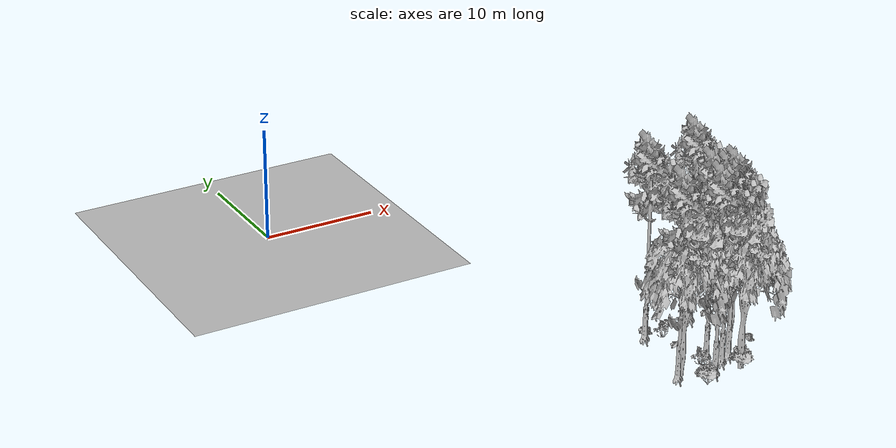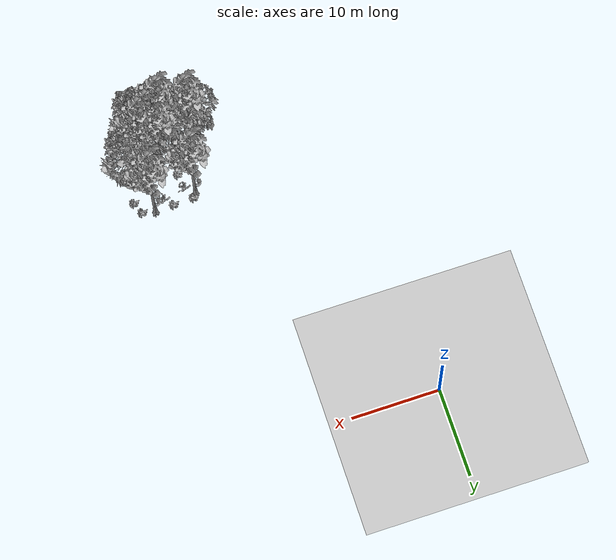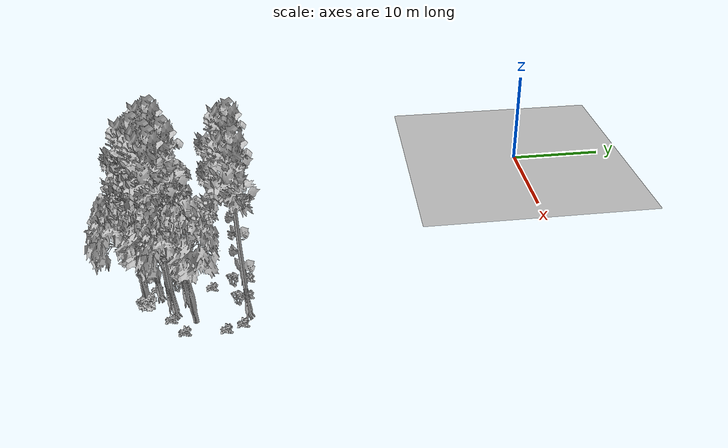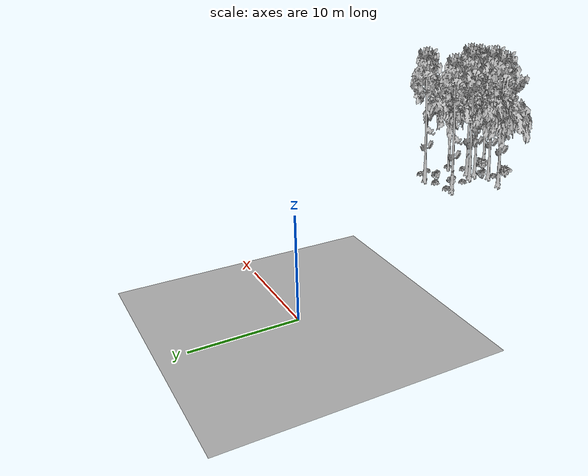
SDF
<sdf version="1.7">
 <world name="default">
  <model name="ground_plane">
   <static>1</static>
   <link name="link">
    <collision name="collision">
     <pose>-50 0 0 0 -0 0</pose>
     <geometry><plane><normal>0 0 1</normal><size>80 80</size></plane></geometry>
     <surface><contact><ode><min_depth>0.01</min_depth><max_vel>0</max_vel></ode></contact></surface>
    </collision>
    <visual name="grass">
     <cast_shadows>0</cast_shadows>
     <geometry>
      <mesh>
       <scale>0.46714285714285714 0.46714285714285714 0.1</scale>
       <uri>file://grass_plane/meshes/grass_plane.dae</uri>
      </mesh>
     </geometry>
    </visual>
   </link>
  </model>
  <model name="Tree 22">
   <static>1</static>
   <pose>16.91029897801893 -36.27519353075037 0 1.57079 -0 0</pose>
   <link name="link">
    <collision name="collision">
     <geometry><mesh><scale>3.5 5 3.5</scale><uri>model://tree_9/meshes/tree_9.obj</uri></mesh></geometry>
    </collision>
    <visual name="visual">
     <geometry><mesh><scale>3.5 5 3.5</scale><uri>model://tree_9/meshes/tree_9.obj</uri></mesh></geometry>
    </visual>
   </link>
  </model>
  <model name="Tree 95">
   <static>1</static>
   <pose>19.814608535801213 -37.03566848126186 0 1.57079 -0 0</pose>
   <link name="link">
    <collision name="collision">
     <geometry><mesh><scale>3.5 5 3.5</scale><uri>model://tree_9/meshes/tree_9.obj</uri></mesh></geometry>
    </collision>
    <visual name="visual">
     <geometry><mesh><scale>3.5 5 3.5</scale><uri>model://tree_9/meshes/tree_9.obj</uri></mesh></geometry>
    </visual>
   </link>
  </model>
  <model name="Tree 173">
   <static>1</static>
   <pose>21.28535016111634 -35.889748338264525 0 1.57079 -0 0</pose>
   <link name="link">
    <collision name="collision">
     <geometry><mesh><scale>3.5 5 3.5</scale><uri>model://tree_9/meshes/tree_9.obj</uri></mesh></geometry>
    </collision>
    <visual name="visual">
     <geometry><mesh><scale>3.5 5 3.5</scale><uri>model://tree_9/meshes/tree_9.obj</uri></mesh></geometry>
    </visual>
   </link>
  </model>
  <model name="Tree 218">
   <static>1</static>
   <pose>17.050132150670407 -36.381362091061824 0 1.57079 -0 0</pose>
   <link name="link">
    <collision name="collision">
     <geometry><mesh><scale>3.5 5 3.5</scale><uri>model://tree_2/meshes/tree_2.obj</uri></mesh></geometry>
    </collision>
    <visual name="visual">
     <geometry><mesh><scale>3.5 5 3.5</scale><uri>model://tree_2/meshes/tree_2.obj</uri></mesh></geometry>
    </visual>
   </link>
  </model>
  <model name="Tree 225">
   <static>1</static>
   <pose>20.741109970217778 -34.64603354429606 0 1.57079 -0 0</pose>
   <link name="link">
    <collision name="collision">
     <geometry><mesh><scale>3.5 5 3.5</scale><uri>model://tree_9/meshes/tree_9.obj</uri></mesh></geometry>
    </collision>
    <visual name="visual">
     <geometry><mesh><scale>3.5 5 3.5</scale><uri>model://tree_9/meshes/tree_9.obj</uri></mesh></geometry>
    </visual>
   </link>
  </model>
  <model name="Tree 258">
   <static>1</static>
   <pose>22.297961354366272 -35.36757667012141 0 1.57079 -0 0</pose>
   <link name="link">
    <collision name="collision">
     <geometry><mesh><scale>3.5 5 3.5</scale><uri>model://tree_9/meshes/tree_9.obj</uri></mesh></geometry>
    </collision>
    <visual name="visual">
     <geometry><mesh><scale>3.5 5 3.5</scale><uri>model://tree_9/meshes/tree_9.obj</uri></mesh></geometry>
    </visual>
   </link>
  </model>
  <model name="Tree 400">
   <static>1</static>
   <pose>23.7706143404493 -33.50807207823347 0 1.57079 -0 0</pose>
   <link name="link">
    <collision name="collision">
     <geometry><mesh><scale>3.5 5 3.5</scale><uri>model://tree_2/meshes/tree_2.obj</uri></mesh></geometry>
    </collision>
    <visual name="visual">
     <geometry><mesh><scale>3.5 5 3.5</scale><uri>model://tree_2/meshes/tree_2.obj</uri></mesh></geometry>
    </visual>
   </link>
  </model>
  <model name="Tree 468">
   <static>1</static>
   <pose>23.10656774249634 -29.195085202353717 0 1.57079 -0 0</pose>
   <link name="link">
    <collision name="collision">
     <geometry><mesh><scale>3.5 5 3.5</scale><uri>model://tree_9/meshes/tree_9.obj</uri></mesh></geometry>
    </collision>
    <visual name="visual">
     <geometry><mesh><scale>3.5 5 3.5</scale><uri>model://tree_9/meshes/tree_9.obj</uri></mesh></geometry>
    </visual>
   </link>
  </model>
  <model name="Tree 477">
   <static>1</static>
   <pose>21.64592274980872 -37.640550428491686 0 1.57079 -0 0</pose>
   <link name="link">
    <collision name="collision">
     <geometry><mesh><scale>3.5 5 3.5</scale><uri>model://tree_2/meshes/tree_2.obj</uri></mesh></geometry>
    </collision>
    <visual name="visual">
     <geometry><mesh><scale>3.5 5 3.5</scale><uri>model://tree_2/meshes/tree_2.obj</uri></mesh></geometry>
    </visual>
   </link>
  </model>
  <model name="Tree 480">
   <static>1</static>
   <pose>18.23841227160792 -29.94094261988174 0 1.57079 -0 0</pose>
   <link name="link">
    <collision name="collision">
     <geometry><mesh><scale>3.5 5 3.5</scale><uri>model://tree_9/meshes/tree_9.obj</uri></mesh></geometry>
    </collision>
    <visual name="visual">
     <geometry><mesh><scale>3.5 5 3.5</scale><uri>model://tree_9/meshes/tree_9.obj</uri></mesh></geometry>
    </visual>
   </link>
  </model>
  <model name="Bush 5">
   <static>1</static>
   <pose>19.145412564877567 -37.41361849886778 0 1.57079 -0 0</pose>
   <link name="link">
    <collision name="collision">
     <geometry><mesh><scale>2 2 2</scale><uri>model://bush_2/meshes/bush_2.obj</uri></mesh></geometry>
     <surface><contact><collide_without_contact>false</collide_without_contact></contact></surface>
    </collision>
    <visual name="visual">
     <geometry><mesh><scale>2 2 2</scale><uri>model://bush_2/meshes/bush_2.obj</uri></mesh></geometry>
    </visual>
   </link>
  </model>
  <model name="Bush 60">
   <static>1</static>
   <pose>25.06784390919705 -30.913636648882765 0 1.57079 -0 0</pose>
   <link name="link">
    <collision name="collision">
     <geometry><mesh><scale>2 2 2</scale><uri>model://bush_2/meshes/bush_2.obj</uri></mesh></geometry>
     <surface><contact><collide_without_contact>false</collide_without_contact></contact></surface>
    </collision>
    <visual name="visual">
     <geometry><mesh><scale>2 2 2</scale><uri>model://bush_2/meshes/bush_2.obj</uri></mesh></geometry>
    </visual>
   </link>
  </model>
  <model name="Bush 89">
   <static>1</static>
   <pose>19.340095062224144 -30.7935147880442 0 1.57079 -0 0</pose>
   <link name="link">
    <collision name="collision">
     <geometry><mesh><scale>2 2 2</scale><uri>model://bush_4/meshes/bush_4.obj</uri></mesh></geometry>
     <surface><contact><collide_without_contact>false</collide_without_contact></contact></surface>
    </collision>
    <visual name="visual">
     <geometry><mesh><scale>2 2 2</scale><uri>model://bush_4/meshes/bush_4.obj</uri></mesh></geometry>
    </visual>
   </link>
  </model>
  <model name="Bush 139">
   <static>1</static>
   <pose>18.088146764890297 -38.47382062699451 0 1.57079 -0 0</pose>
   <link name="link">
    <collision name="collision">
     <geometry><mesh><scale>2 2 2</scale><uri>model://bush_1/meshes/bush_1.obj</uri></mesh></geometry>
     <surface><contact><collide_without_contact>false</collide_without_contact></contact></surface>
    </collision>
    <visual name="visual">
     <geometry><mesh><scale>2 2 2</scale><uri>model://bush_1/meshes/bush_1.obj</uri></mesh></geometry>
    </visual>
   </link>
  </model>
  <model name="Bush 148">
   <static>1</static>
   <pose>19.42538225846645 -35.67261883583381 0 1.57079 -0 0</pose>
   <link name="link">
    <collision name="collision">
     <geometry><mesh><scale>2 2 2</scale><uri>model://bush_4/meshes/bush_4.obj</uri></mesh></geometry>
     <surface><contact><collide_without_contact>false</collide_without_contact></contact></surface>
    </collision>
    <visual name="visual">
     <geometry><mesh><scale>2 2 2</scale><uri>model://bush_4/meshes/bush_4.obj</uri></mesh></geometry>
    </visual>
   </link>
  </model>
  <model name="Bush 150">
   <static>1</static>
   <pose>19.45095483602838 -32.625148764641395 0 1.57079 -0 0</pose>
   <link name="link">
    <collision name="collision">
     <geometry><mesh><scale>2 2 2</scale><uri>model://bush_2/meshes/bush_2.obj</uri></mesh></geometry>
     <surface><contact><collide_without_contact>false</collide_without_contact></contact></surface>
    </collision>
    <visual name="visual">
     <geometry><mesh><scale>2 2 2</scale><uri>model://bush_2/meshes/bush_2.obj</uri></mesh></geometry>
    </visual>
   </link>
  </model>
  <model name="Bush 223">
   <static>1</static>
   <pose>24.94624004260011 -34.28460928719814 0 1.57079 -0 0</pose>
   <link name="link">
    <collision name="collision">
     <geometry><mesh><scale>2 2 2</scale><uri>model://bush_2/meshes/bush_2.obj</uri></mesh></geometry>
     <surface><contact><collide_without_contact>false</collide_without_contact></contact></surface>
    </collision>
    <visual name="visual">
     <geometry><mesh><scale>2 2 2</scale><uri>model://bush_2/meshes/bush_2.obj</uri></mesh></geometry>
    </visual>
   </link>
  </model>
  <model name="Bush 226">
   <static>1</static>
   <pose>21.896844416235602 -30.193618121918853 0 1.57079 -0 0</pose>
   <link name="link">
    <collision name="collision">
     <geometry><mesh><scale>2 2 2</scale><uri>model://bush_4/meshes/bush_4.obj</uri></mesh></geometry>
     <surface><contact><collide_without_contact>false</collide_without_contact></contact></surface>
    </collision>
    <visual name="visual">
     <geometry><mesh><scale>2 2 2</scale><uri>model://bush_4/meshes/bush_4.obj</uri></mesh></geometry>
    </visual>
   </link>
  </model>
  <model name="Bush 359">
   <static>1</static>
   <pose>23.27379961297462 -35.60368897214496 0 1.57079 -0 0</pose>
   <link name="link">
    <collision name="collision">
     <geometry><mesh><scale>2 2 2</scale><uri>model://bush_2/meshes/bush_2.obj</uri></mesh></geometry>
     <surface><contact><collide_without_contact>false</collide_without_contact></contact></surface>
    </collision>
    <visual name="visual">
     <geometry><mesh><scale>2 2 2</scale><uri>model://bush_2/meshes/bush_2.obj</uri></mesh></geometry>
    </visual>
   </link>
  </model>
  <model name="Bush 370">
   <static>1</static>
   <pose>24.51042753384261 -29.593316108860172 0 1.57079 -0 0</pose>
   <link name="link">
    <collision name="collision">
     <geometry><mesh><scale>2 2 2</scale><uri>model://bush_2/meshes/bush_2.obj</uri></mesh></geometry>
     <surface><contact><collide_without_contact>false</collide_without_contact></contact></surface>
    </collision>
    <visual name="visual">
     <geometry><mesh><scale>2 2 2</scale><uri>model://bush_2/meshes/bush_2.obj</uri></mesh></geometry>
    </visual>
   </link>
  </model>
  <model name="Bush 479">
   <static>1</static>
   <pose>18.59581817317366 -29.47360341033466 0 1.57079 -0 0</pose>
   <link name="link">
    <collision name="collision">
     <geometry><mesh><scale>2 2 2</scale><uri>model://bush_2/meshes/bush_2.obj</uri></mesh></geometry>
     <surface><contact><collide_without_contact>false</collide_without_contact></contact></surface>
    </collision>
    <visual name="visual">
     <geometry><mesh><scale>2 2 2</scale><uri>model://bush_2/meshes/bush_2.obj</uri></mesh></geometry>
    </visual>
   </link>
  </model>
  <model name="Bush 555">
   <static>1</static>
   <pose>20.92830076564789 -29.39546481596598 0 1.57079 -0 0</pose>
   <link name="link">
    <collision name="collision">
     <geometry><mesh><scale>2 2 2</scale><uri>model://bush_2/meshes/bush_2.obj</uri></mesh></geometry>
     <surface><contact><collide_without_contact>false</collide_without_contact></contact></surface>
    </collision>
    <visual name="visual">
     <geometry><mesh><scale>2 2 2</scale><uri>model://bush_2/meshes/bush_2.obj</uri></mesh></geometry>
    </visual>
   </link>
  </model>
  <model name="Bush 589">
   <static>1</static>
   <pose>21.880849196173145 -37.8034867931163 0 1.57079 -0 0</pose>
   <link name="link">
    <collision name="collision">
     <geometry><mesh><scale>2 2 2</scale><uri>model://bush_1/meshes/bush_1.obj</uri></mesh></geometry>
     <surface><contact><collide_without_contact>false</collide_without_contact></contact></surface>
    </collision>
    <visual name="visual">
     <geometry><mesh><scale>2 2 2</scale><uri>model://bush_1/meshes/bush_1.obj</uri></mesh></geometry>
    </visual>
   </link>
  </model>
 </world>
</sdf>
